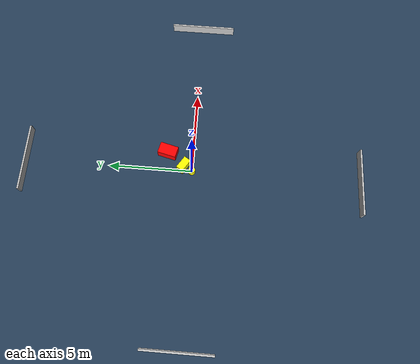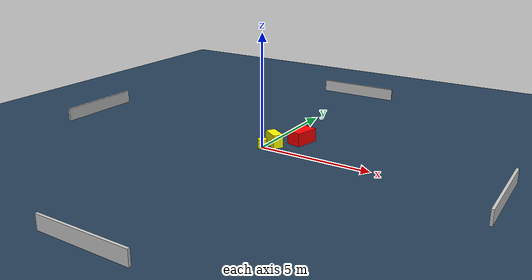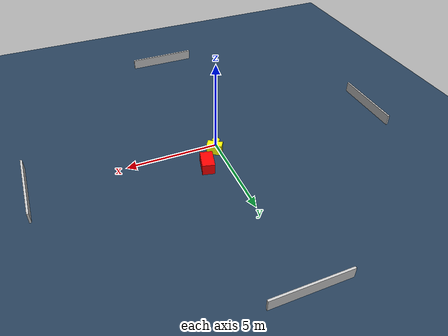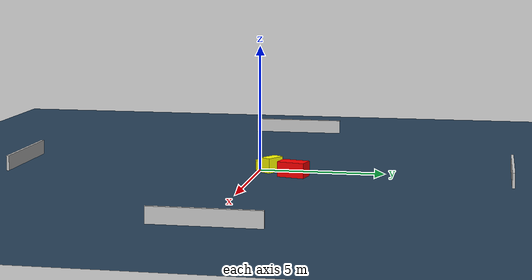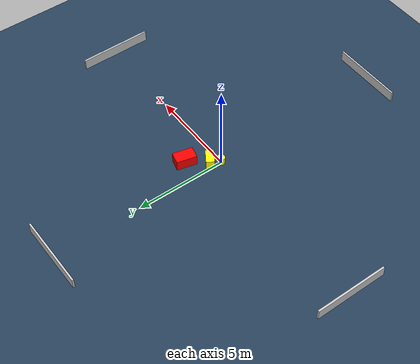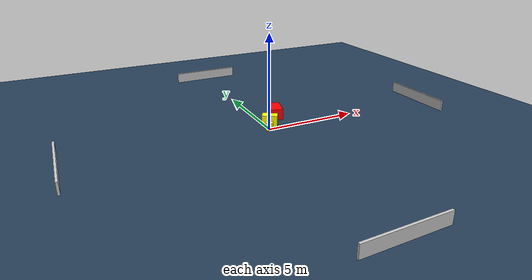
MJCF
<?xml version="1.0" ?>
<mujoco model="generated_environment">
  <option timestep="0.01" integrator="RK4" cone="elliptic"/>
  <default>
    <geom density="1"/>
  </default>
  <asset>
    <texture builtin="gradient" height="3072" name="skybox" rgb1="0.3 0.5 0.7" rgb2="0 0 0" type="skybox" width="512"/>
    <texture builtin="checker" height="300" name="groundplane" rgb1="0.2 0.3 0.4" rgb2="0.1 0.2 0.3" type="2d" width="300"/>
    <material name="groundplane" reflectance="0.2" texrepeat="5 5" texture="groundplane"/>
  </asset>
  <worldbody>
    <light dir="0 0 -1" directional="true" pos="0 0 1.5"/>
    <geom condim="3" friction="0.5 0.005 0.001" material="groundplane" name="floor" pos="0 0 0" size="0 0 0.05" type="plane"/>
    <body name="walls">
      <geom name="wall_1" condim="4" pos="-10.0 0.0 0.3" rgba="0.800000011920929 0.800000011920929 0.800000011920929 1.0" size="0.05 2.0 0.3" type="box"/>
      <geom name="wall_2" condim="4" pos="10.0 0.0 0.3" rgba="0.800000011920929 0.800000011920929 0.800000011920929 1.0" size="0.05 2.0 0.3" type="box"/>
      <geom name="wall_3" condim="4" pos="0.0 -10.0 0.3" rgba="0.800000011920929 0.800000011920929 0.800000011920929 1.0" size="2.0 0.05 0.3" type="box"/>
      <geom name="wall_4" condim="4" pos="0.0 10.0 0.3" rgba="0.800000011920929 0.800000011920929 0.800000011920929 1.0" size="2.0 0.05 0.3" type="box"/>
    </body>
    <body name="robot">
      <joint name="joint_x" type="slide" pos="0 0 0" axis="1 0 0"/>
      <joint name="joint_y" type="slide" pos="0 0 0" axis="0 1 0"/>
      <geom name="robot" type="cylinder" pos="0.0 0.0 0.2" size="0.2 0.2 0.0" mass="5.0" friction="1.0 0.005 0.0001" condim="4" rgba="1.0 1.0 0.0 1.0"/>
    </body>
    <body name="obstacle_1_movable">
      <geom name="obstacle_1_movable" condim="4" pos="0.2854073110583604 0.5163158354540244 0.3" euler="0 0 327.10363864247694" friction="0.0 0.005 0.001" rgba="1.0 1.0 0.0 1.0" size="0.40851959919924713 0.2225713108533186 0.3" type="box" mass="0.1"/>
      <joint type="free"/>
    </body>
    <body name="obstacle_2_static">
      <geom name="obstacle_2_static" condim="4" pos="1.102042663973577 1.515664698450132 0.3" euler="0 0 76.26589747537072" friction="0.0 0.005 0.001" rgba="1.0 0.0 0.0 1.0" size="0.5510438226254566 0.3326574848126551 0.3" type="box"/>
    </body>
  </worldbody>
  <actuator>
    <motor name="actuator_x" joint="joint_x" gear="1" ctrlrange="-1 1"/>
    <motor name="actuator_y" joint="joint_y" gear="1" ctrlrange="-1 1"/>
  </actuator>
</mujoco>
